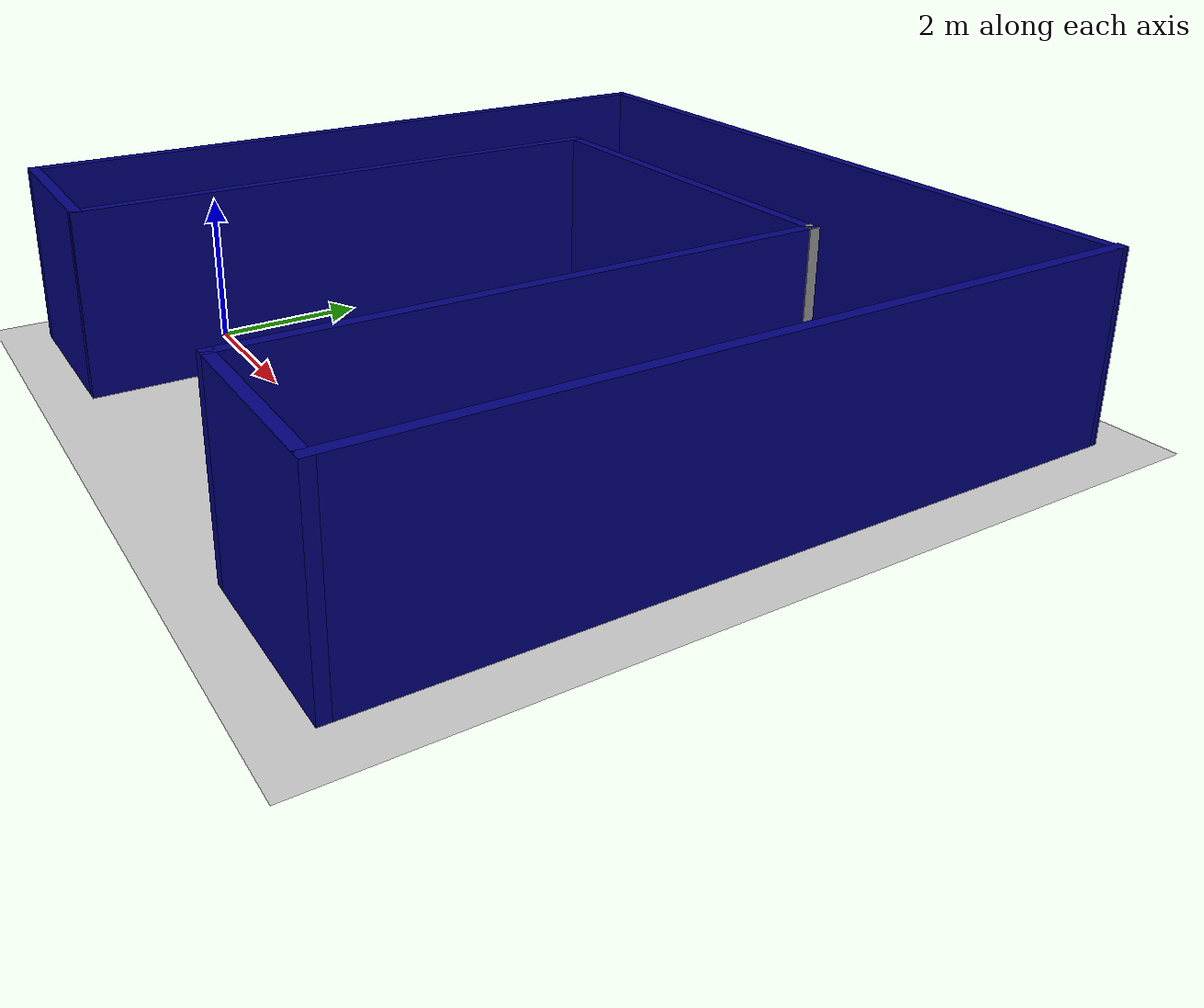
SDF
<sdf version="1.6">
 <world name="default">
  <light name="sun" type="directional">
   <pose>0 0 10 0 -0 0</pose>
   <diffuse>0.8 0.8 0.8 1</diffuse>
   <specular>0.1 0.1 0.1 1</specular>
   <attenuation>
    <range>1000</range>
    <constant>0.9</constant>
    <linear>0.01</linear>
    <quadratic>0.001</quadratic>
   </attenuation>
   <direction>-0.5 0.5 -1</direction>
  </light>
  <model name="ground_plane">
   <static>1</static>
   <link name="link">
    <collision name="collision">
     <geometry><plane><normal>0 0 1</normal><size>100 100</size></plane></geometry>
     <surface><friction><ode><mu>100</mu><mu2>50</mu2></ode></friction></surface>
    </collision>
    <visual name="visual">
     <cast_shadows>0</cast_shadows>
     <geometry><plane><normal>0 0 1</normal><size>100 100</size></plane></geometry>
     <material>
      <script><uri>file://media/materials/scripts/gazebo.material</uri><name>Gazebo/Grey</name></script>
     </material>
    </visual>
   </link>
  </model>
  <gravity>0 0 -9.8</gravity>
  <magnetic_field>6e-06 2.3e-05 -4.2e-05</magnetic_field>
  <atmosphere type="adiabatic"/>
  <physics name="default_physics" default="0" type="ode">
   <max_step_size>0.001</max_step_size>
   <real_time_factor>1</real_time_factor>
   <real_time_update_rate>1000</real_time_update_rate>
  </physics>
  <scene><ambient>0.4 0.4 0.4 1</ambient><background>0.7 0.7 0.7 1</background><shadows>1</shadows></scene>
  <spherical_coordinates>
   <surface_model>EARTH_WGS84</surface_model>
   <latitude_deg>0</latitude_deg>
   <longitude_deg>0</longitude_deg>
   <elevation>0</elevation>
   <heading_deg>0</heading_deg>
  </spherical_coordinates>
  <model name="new_world">
   <pose>3.76828 2.79473 0 0 -0 0</pose>
   <link name="Wall_0">
    <collision name="Wall_0_Collision">
     <geometry><box><size>10.0001 0.15 2.5</size></box></geometry>
     <pose>0 0 1.25 0 -0 0</pose>
    </collision>
    <visual name="Wall_0_Visual">
     <pose>0 0 1.25 0 -0 0</pose>
     <geometry><box><size>10.0001 0.15 2.5</size></box></geometry>
     <material>
      <script><uri>file://media/materials/scripts/gazebo.material</uri><name>Gazebo/Grey</name></script>
      <ambient>0 0 0.498039 1</ambient>
     </material>
    </visual>
    <pose>0 4.90724 0 0 0 -0.004697</pose>
   </link>
   <link name="Wall_1">
    <collision name="Wall_1_Collision">
     <geometry><box><size>0.15 0.15 2.5</size></box></geometry>
     <pose>0 0 1.25 0 -0 0</pose>
    </collision>
    <visual name="Wall_1_Visual">
     <pose>0 0 1.25 0 -0 0</pose>
     <geometry><box><size>0.15 0.15 2.5</size></box></geometry>
     <material>
      <script><uri>file://media/materials/scripts/gazebo.material</uri><name>Gazebo/Grey</name></script>
      <ambient>1 1 1 1</ambient>
     </material>
    </visual>
    <pose>4.925 4.91928 0 0 -0 0</pose>
   </link>
   <link name="Wall_11">
    <collision name="Wall_11_Collision">
     <geometry><box><size>7.5 0.15 2.5</size></box></geometry>
     <pose>0 0 1.25 0 -0 0</pose>
    </collision>
    <visual name="Wall_11_Visual">
     <pose>0 0 1.25 0 -0 0</pose>
     <geometry><box><size>7.5 0.15 2.5</size></box></geometry>
     <material>
      <script><uri>file://media/materials/scripts/gazebo.material</uri><name>Gazebo/Grey</name></script>
      <ambient>0 0 0.498039 1</ambient>
     </material>
    </visual>
    <pose>-2.575 -1.24463 0 0 -0 1.5708</pose>
   </link>
   <link name="Wall_13">
    <collision name="Wall_13_Collision">
     <geometry><box><size>7.5 0.15 2.5</size></box></geometry>
     <pose>0 0 1.25 0 -0 0</pose>
    </collision>
    <visual name="Wall_13_Visual">
     <pose>0 0 1.25 0 -0 0</pose>
     <geometry><box><size>7.5 0.15 2.5</size></box></geometry>
     <material>
      <script><uri>file://media/materials/scripts/gazebo.material</uri><name>Gazebo/Grey</name></script>
      <ambient>0 0 0.498039 1</ambient>
     </material>
    </visual>
    <pose>2.575 -1.25572 0 0 -0 1.5708</pose>
   </link>
   <link name="Wall_14">
    <collision name="Wall_14_Collision">
     <geometry><box><size>0.16 0.15 2.5</size></box></geometry>
     <pose>0 0 1.25 0 -0 0</pose>
    </collision>
    <visual name="Wall_14_Visual">
     <pose>0 0 1.25 0 -0 0</pose>
     <geometry><box><size>0.16 0.15 2.5</size></box></geometry>
     <material>
      <script><uri>file://media/materials/scripts/gazebo.material</uri><name>Gazebo/Grey</name></script>
      <ambient>1 1 1 1</ambient>
     </material>
    </visual>
    <pose>2.58 2.41928 0 0 -0 0</pose>
   </link>
   <link name="Wall_16">
    <collision name="Wall_16_Collision">
     <geometry><box><size>5.30001 0.15 2.5</size></box></geometry>
     <pose>0 0 1.25 0 -0 0</pose>
    </collision>
    <visual name="Wall_16_Visual">
     <pose>0 0 1.25 0 -0 0</pose>
     <geometry><box><size>5.30001 0.15 2.5</size></box></geometry>
     <material>
      <script><uri>file://media/materials/scripts/gazebo.material</uri><name>Gazebo/Grey</name></script>
      <ambient>0 0 0.498039 1</ambient>
     </material>
    </visual>
    <pose>0 2.42482 0 0 0 -0.002152</pose>
   </link>
   <link name="Wall_2">
    <collision name="Wall_2_Collision">
     <geometry><box><size>10 0.15 2.5</size></box></geometry>
     <pose>0 0 1.25 0 -0 0</pose>
    </collision>
    <visual name="Wall_2_Visual">
     <pose>0 0 1.25 0 -0 0</pose>
     <geometry><box><size>10 0.15 2.5</size></box></geometry>
     <material>
      <script><uri>file://media/materials/scripts/gazebo.material</uri><name>Gazebo/Grey</name></script>
      <ambient>0 0 0.498039 1</ambient>
     </material>
    </visual>
    <pose>4.925 -0.005717 0 0 0 -1.5708</pose>
   </link>
   <link name="Wall_5">
    <collision name="Wall_5_Collision">
     <geometry><box><size>10 0.15 2.5</size></box></geometry>
     <pose>0 0 1.25 0 -0 0</pose>
    </collision>
    <visual name="Wall_5_Visual">
     <pose>0 0 1.25 0 -0 0</pose>
     <geometry><box><size>10 0.15 2.5</size></box></geometry>
     <material>
      <script><uri>file://media/materials/scripts/gazebo.material</uri><name>Gazebo/Grey</name></script>
      <ambient>0 0 0.498039 1</ambient>
     </material>
    </visual>
    <pose>-4.925 0.005366 0 0 0 -1.5708</pose>
   </link>
   <link name="Wall_7">
    <collision name="Wall_7_Collision">
     <geometry><box><size>2.5 0.15 2.5</size></box></geometry>
     <pose>0 0 1.25 0 -0 0</pose>
    </collision>
    <visual name="Wall_7_Visual">
     <pose>0 0 1.25 0 -0 0</pose>
     <geometry><box><size>2.5 0.15 2.5</size></box></geometry>
     <material>
      <script><uri>file://media/materials/scripts/gazebo.material</uri><name>Gazebo/Grey</name></script>
      <ambient>0 0 0.498039 1</ambient>
     </material>
    </visual>
    <pose>-3.75 -4.91963 0 0 -0 0</pose>
   </link>
   <link name="Wall_9">
    <collision name="Wall_9_Collision">
     <geometry><box><size>2.5 0.15 2.5</size></box></geometry>
     <pose>0 0 1.25 0 -0 0</pose>
    </collision>
    <visual name="Wall_9_Visual">
     <pose>0 0 1.25 0 -0 0</pose>
     <geometry><box><size>2.5 0.15 2.5</size></box></geometry>
     <material>
      <script><uri>file://media/materials/scripts/gazebo.material</uri><name>Gazebo/Grey</name></script>
      <ambient>0 0 0.498039 1</ambient>
     </material>
    </visual>
    <pose>3.75 -4.93072 0 0 -0 3.14159</pose>
   </link>
   <static>1</static>
  </model>
 </world>
</sdf>
